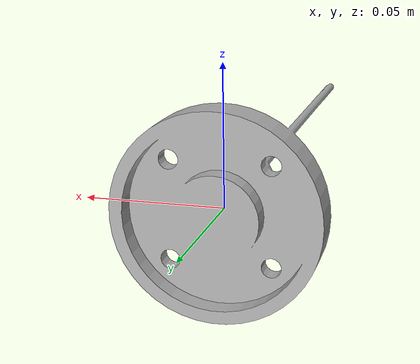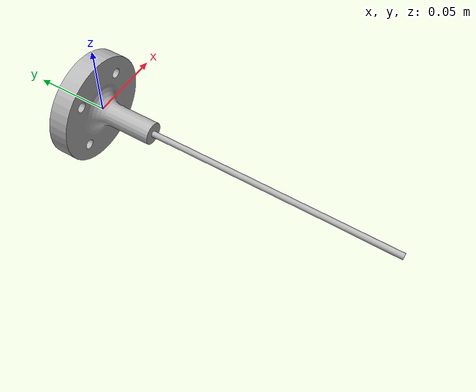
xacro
<?xml version="1.0" ?>
<robot name="TCP_UR_endo_completo_1" xmlns:xacro="http://www.ros.org/wiki/xacro">

<xacro:include filename="$(find TCP_UR_endo_completo_1_description)/urdf/materials.xacro" />
<xacro:include filename="$(find TCP_UR_endo_completo_1_description)/urdf/TCP_UR_endo_completo_1.trans" />
<xacro:include filename="$(find TCP_UR_endo_completo_1_description)/urdf/TCP_UR_endo_completo_1.gazebo" />
<link name="base_link">
  <inertial>
    <origin xyz="-6.86225599579643e-08 -0.004574470622730018 2.7737441340990564e-08" rpy="0 0 0"/>
    <mass value="0.39761064681308467"/>
    <inertia ixx="0.000462" iyy="0.000216" izz="0.000462" ixy="-0.0" iyz="-0.0" ixz="0.0"/>
  </inertial>
  <visual>
    <origin xyz="0 0 0" rpy="0 0 0"/>
    <geometry>
      <mesh filename="package://TCP_UR_endo_completo_1_description/meshes/base_link.stl" scale="0.001 0.001 0.001"/>
    </geometry>
    <material name="silver"/>
  </visual>
  <collision>
    <origin xyz="0 0 0" rpy="0 0 0"/>
    <geometry>
      <mesh filename="package://TCP_UR_endo_completo_1_description/meshes/base_link.stl" scale="0.001 0.001 0.001"/>
    </geometry>
  </collision>
</link>

</robot>

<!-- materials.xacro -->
<robot name="TCP_UR_endo_completo_1" xmlns:xacro="http://www.ros.org/wiki/xacro" >

<material name="silver">
  <color rgba="0.700 0.700 0.700 1.000"/>
</material>

</robot>

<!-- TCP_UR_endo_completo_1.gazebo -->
<robot name="TCP_UR_endo_completo_1" xmlns:xacro="http://www.ros.org/wiki/xacro" >

<xacro:property name="body_color" value="Gazebo/Silver" />

<gazebo>
  <plugin name="control" filename="libgazebo_ros_control.so"/>
</gazebo>
<gazebo reference="base_link">
  <material>${body_color}</material>
  <mu1>0.2</mu1>
  <mu2>0.2</mu2>
  <selfCollide>true</selfCollide>
  <gravity>true</gravity>
</gazebo>

</robot>
